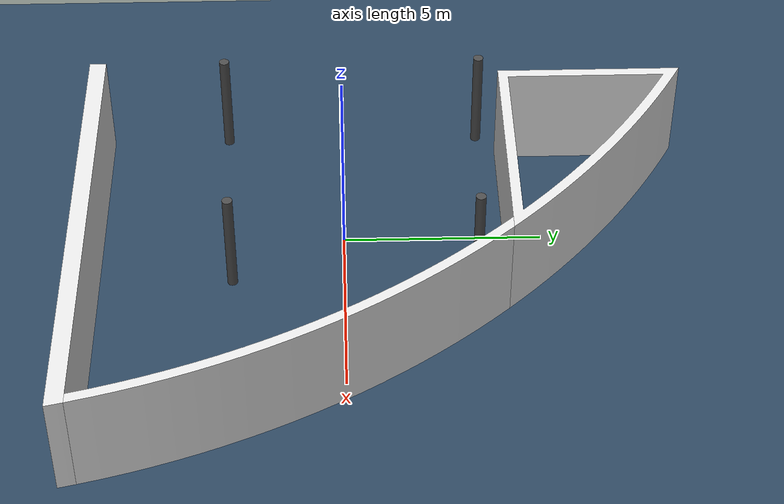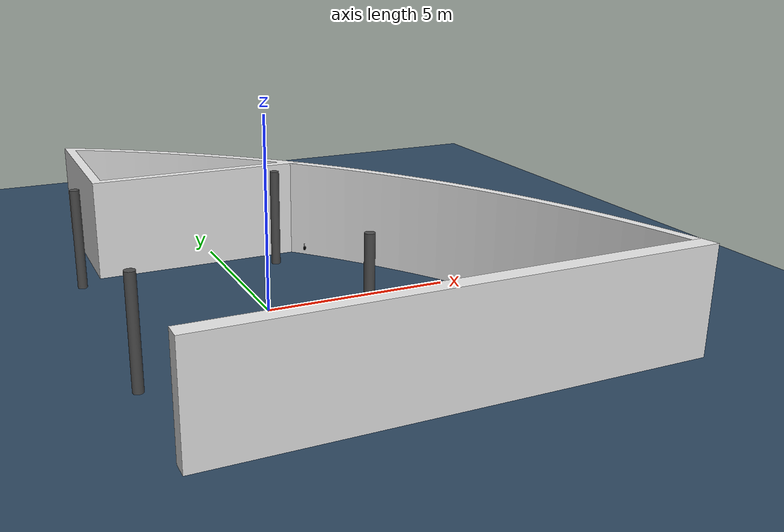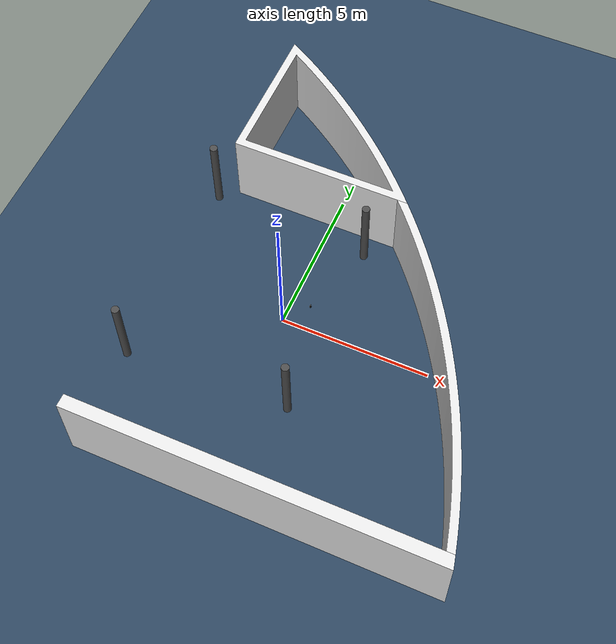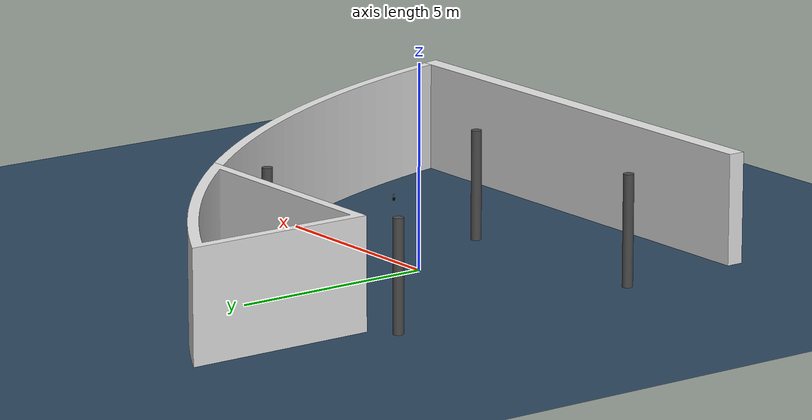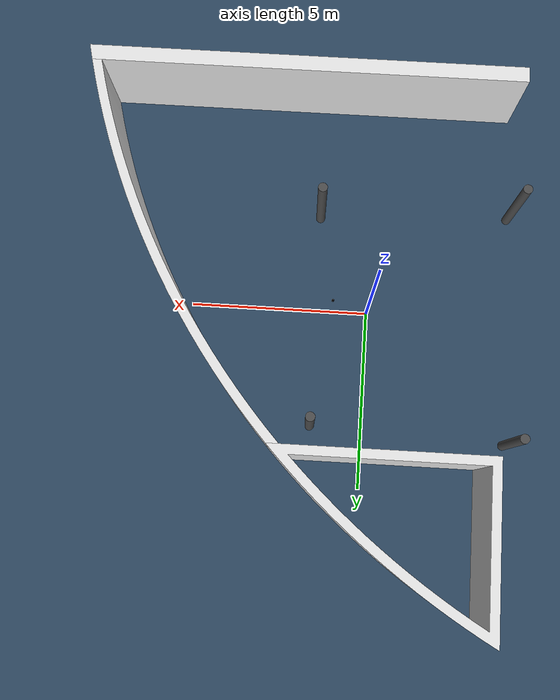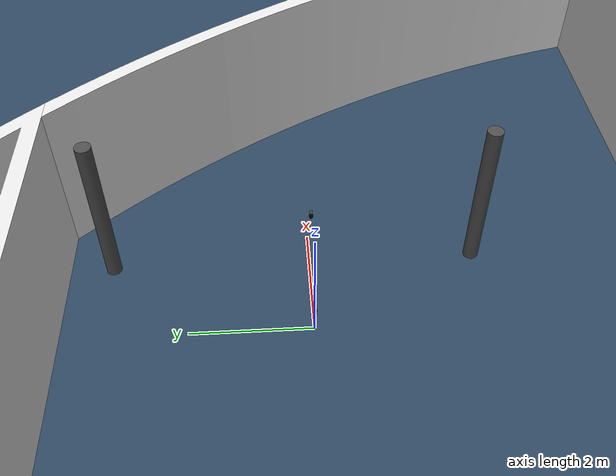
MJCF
<mujoco model="Lagyi">
	<include file="common_assets.xml" />
	<default class="main">
		<default class="lagyi">
			<geom quat="0 0 0.7071 0.7071" rgba="0.9 0.9 0.9 1" />
		</default>
		<default class="pole">
			<geom rgba="0.1 0.1 0.1 1" />
			<default class="pole_top">
				<geom type="cylinder" size="0.022 0.5" pos="0 0 0.5" />
			</default>
			<default class="pole_bottom1">
				<geom type="box" size="0.02 0.205 0.02" quat="0.7071 0 0 0.7071" pos="0 0 0.02" />
				<default class="pole_bottom2">
					<geom quat="1 0 0 0" />
				</default>
			</default>
		</default>
		<default class="landing_zone">
			<geom type="box" pos="0 0 0.01" size="0.1175 0.0975 0.01" rgba="0.8 0.8 0.8 1.0" />
		</default>
	</default>
	<compiler angle="radian" meshdir="" />
	<option timestep="0.001" integrator="implicitfast" />
	<visual>
		<quality shadowsize="4096" />
		<global offwidth="1920" offheight="1200" />
	</visual>
	<asset>
		<mesh file="meshes/crazyflie/cf2_assembly.stl" name="crazyflie" smoothnormal="true" scale="1.5 1.5 1.5" />
		<mesh file="meshes/building/lagyi_cockpit.stl" name="cockpit" smoothnormal="true" scale="0.0085 0.0085 0.0085" />
		<mesh file="meshes/building/lagyi_fal1.stl" name="fal1" smoothnormal="true" scale="0.0085 0.0085 0.0085" />
		<mesh file="meshes/building/lagyi_fal2.stl" name="fal2" smoothnormal="true" scale="0.0085 0.0085 0.0085" />
		<mesh file="meshes/building/lagyi_oszlop1.stl" name="oszlop1" smoothnormal="true" scale="0.0085 0.0085 0.0085" />
		<mesh file="meshes/building/lagyi_oszlop2.stl" name="oszlop2" smoothnormal="true" scale="0.0085 0.0085 0.0085" />
		<mesh file="meshes/building/lagyi_oszlop3.stl" name="oszlop3" smoothnormal="true" scale="0.0085 0.0085 0.0085" />
		<mesh file="meshes/building/lagyi_oszlop4.stl" name="oszlop4" smoothnormal="true" scale="0.0085 0.0085 0.0085" />
		<mesh file="meshes/bucket/Bucket3.obj" name="bucket" smoothnormal="false" scale="0.035 0.035 0.035" />
		<texture type="skybox" builtin="gradient" rgb1=".3 .5 .7" rgb2="0 0 0" width="512" height="512" />
		<texture name="tex-carpet" type="2d" file="textures/carpet_lagyi4.png" />
		<texture name="tex-roundabout" type="2d" file="textures/roundabout.png" />
		<texture name="tex-hospital" type="2d" file="textures/hospital.png" />
		<texture name="tex-post_office" type="2d" file="textures/post_office.png" />
		<texture name="tex-airport" type="2d" file="textures/airport.png" />
		<texture name="tex-parking_lot" type="2d" file="textures/parking_lot.png" />
		<texture name="tex-sztaki" type="2d" file="textures/sztaki.png" />
		<material name="mat-carpet" shininess="0.1" texture="tex-carpet" texuniform="false" />
		<material name="mat-roundabout" reflectance="0.7" texture="tex-roundabout" texuniform="false" />
		<material name="mat-hospital" reflectance="0.7" texrepeat="7.843 7.692" texture="tex-hospital" texuniform="true" />
		<material name="mat-post_office" reflectance="0.7" texrepeat="7.843 7.843" texture="tex-post_office" texuniform="true" />
		<material name="mat-airport" reflectance="0.7" texrepeat="9.524 9.524" texture="tex-airport" texuniform="true" />
		<material name="mat-parking_lot" reflectance="0.7" texrepeat="9.524 8.696" texture="tex-parking_lot" texuniform="true" />
		<material name="mat-sztaki" reflectance="0.7" texrepeat="9.524 9.524" texture="tex-sztaki" texuniform="true" />
		<texture name="grid" type="2d" builtin="checker" width="100" height="100" rgb1=".1 .2 .3" rgb2=".25 .35 .45" />
		<material name="grid" texture="grid" texrepeat="1 1" texuniform="true" reflectance=".05" />
	</asset>
	<worldbody>
		<camera pos="2.867 -5.173 1.776" xyaxes="0.875 0.485 0.000 -0.139 0.252 0.958" />
		<light dir="0 -0.3 -1" diffuse=".9 .9 .9" specular="0.6 0.9 0.6" pos="1 1 15" cutoff="70" />
		<light dir="-.2 1 -.4" diffuse=".9 .9 .9" specular="0.6 0.9 0.6" pos="2 -5 6" cutoff="70" />
		<light dir="-1.0 -1.0 -.4" diffuse=".9 .9 .9" specular="0.6 0.9 0.6" pos="10 10 6" directional="true" cutoff="70" />
		<geom size="20 20 .0005" pos="0 0 -0.00025" type="plane" material="grid" condim="3" />
		<geom name="carpet" size="7.644 7.644 .0005" pos="3.16 1.115 0.00025" quat="0.7071 0 0 0.7071" type="plane" material="mat-carpet" />
		<geom name="roundabout" size="1.5 1.5 .0005" pos="0 0 0.00075" quat="1 0 0 0" type="plane" material="mat-roundabout" condim="3" />
		<geom name="ground" size="20 20 .0050" pos="0 0 0.00125" type="plane" material="grid" condim="3" rgba="0 1 0 0" />
		<body name="lagyi" pos="1.45 -2.8 0" childclass="lagyi">
			<geom name="cockpit" type="mesh" mesh="cockpit" />
			<geom name="fal1" type="mesh" mesh="fal1" />
			<geom name="fal2" type="mesh" mesh="fal2" />
			<geom name="oszlop1" type="mesh" mesh="oszlop1" rgba="0.3 0.3 0.3 1" />
			<geom name="oszlop2" type="mesh" mesh="oszlop2" rgba="0.3 0.3 0.3 1" />
			<geom name="oszlop3" type="mesh" mesh="oszlop3" rgba="0.3 0.3 0.3 1" />
			<geom name="oszlop4" type="mesh" mesh="oszlop4" rgba="0.3 0.3 0.3 1" />
		</body>
		<body name="DynamicPayload_0" pos="1 0 1.5" quat="1 0 0 0">
			<joint name="DynamicPayload_0" type="free" />
			<geom name="DynamicPayload_0" type="mesh" mesh="payload_simplified" pos="0 0 0.0405" rgba="0 0 0 1" euler="1.57 0 0" mass="0.0001" />
			<geom name="DynamicPayload_0_bottom" type="box" size=".016 .016 .02" pos="0 0 0.0175" mass="0.07" rgba="1.0 1.0 1.0 0.0" />
			<geom type="capsule" pos="0 0 0.075" size="0.004 0.027" rgba="0 0 0 1" mass="0.0001" />
			<geom type="capsule" pos="0 0.01173 0.10565" euler="-1.12200 0 0" size="0.004 0.01562" rgba="0 0 0 1" mass="0.0001" />
			<geom type="capsule" pos="0 0.01061 0.10439" euler="-1.17810 0 0" size="0.004 0.01378" rgba="0 0 0 1" mass="0.0001" />
			<geom type="capsule" pos="0 0.02561 0.11939" euler="-0.39270 0 0" size="0.004 0.01378" rgba="0 0 0 1" mass="0.0001" />
			<geom type="capsule" pos="0 0.02561 0.14061" euler="0.39270 0 0" size="0.004 0.01378" rgba="0 0 0 1" mass="0.0001" />
			<geom type="capsule" pos="0 0.01061 0.15561" euler="1.17810 0 0" size="0.004 0.01378" rgba="0 0 0 1" mass="0.0001" />
			<geom type="capsule" pos="0 -0.01061 0.15561" euler="1.96350 0 0" size="0.004 0.01378" rgba="0 0 0 1" mass="0.0001" />
			<geom type="capsule" pos="0 -0.02561 0.14061" euler="2.74889 0 0" size="0.004 0.008" rgba="0 0 0 1" mass="0.0001" />
		</body>
		<body name="MocapPayload_0" pos="0 0 0.5" quat="0 1 0 0" mocap="true">
			<geom name="MocapPayload_0" type="mesh" mesh="payload_simplified" pos="0 0 0.0405" rgba="0 0 0 1" euler="1.57 0 0" />
			<geom type="capsule" pos="0 0 0.075" size="0.004 0.027" rgba="0 0 0 1" />
			<geom type="capsule" pos="0 0.01173 0.10565" euler="-1.12200 0 0" size="0.004 0.01562" rgba="0 0 0 1" />
			<geom type="capsule" pos="0 0.01061 0.10439" euler="-1.17810 0 0" size="0.004 0.01378" rgba="0 0 0 1" />
			<geom type="capsule" pos="0 0.02561 0.11939" euler="-0.39270 0 0" size="0.004 0.01378" rgba="0 0 0 1" />
			<geom type="capsule" pos="0 0.02561 0.14061" euler="0.39270 0 0" size="0.004 0.01378" rgba="0 0 0 1" />
			<geom type="capsule" pos="0 0.01061 0.15561" euler="1.17810 0 0" size="0.004 0.01378" rgba="0 0 0 1" />
			<geom type="capsule" pos="0 -0.01061 0.15561" euler="1.96350 0 0" size="0.004 0.01378" rgba="0 0 0 1" />
			<geom type="capsule" pos="0 -0.02561 0.14061" euler="2.74889 0 0" size="0.004 0.008" rgba="0 0 0 1" />
		</body>
	</worldbody>
	<actuator />
	<sensor />
</mujoco>

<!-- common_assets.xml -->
<mujoco>
  <asset>
    <mesh file="meshes/payload/payload_simplified.stl" name="payload_simplified" smoothnormal="false" scale="0.00115 0.00115 0.00115"/>

    <mesh file="meshes/crazyflie/cf_body.stl" name="crazyflie_body" smoothnormal="true" scale="1.0452 1.0452 1.0452"/>
    <mesh file="meshes/crazyflie/4_motormounts.stl" name="crazyflie_4_motormounts" smoothnormal="true" scale="1.0452 1.0452 1.0452"/>
    <mesh file="meshes/crazyflie/4_motors.stl" name="crazyflie_4_motors" smoothnormal="true" scale="1.0452 1.0452 1.0452"/>
    <mesh file="meshes/crazyflie/ccw_prop.stl" name="crazyflie_ccw_prop" smoothnormal="true" scale="1.0452 1.0452 1.0452"/>
    <mesh file="meshes/crazyflie/cw_prop.stl" name="crazyflie_cw_prop" smoothnormal="true" scale="1.0452 1.0452 1.0452"/>

    <mesh file="meshes/bumblebee/quad_model_no_prop_simplified.stl" name="bumblebee_body" smoothnormal="true" scale="0.001 0.001 0.001"/>
    <mesh file="meshes/bumblebee/ccw_propeller_simplified.stl" name="bumblebee_ccw_prop" smoothnormal="true" scale="0.001 0.001 0.001"/>
    <mesh file="meshes/bumblebee/cw_propeller_simplified.stl" name="bumblebee_cw_prop" smoothnormal="true" scale="0.001 0.001 0.001"/>

    <texture name="tex_check" builtin="checker" type="2d" width="256" height="256" rgb1=".8 .1 .1" rgb2=".1 .1 .8"/>
    <material name="material_check" texture="tex_check" texrepeat="2 2" texuniform="true"/>
  </asset>
</mujoco>
